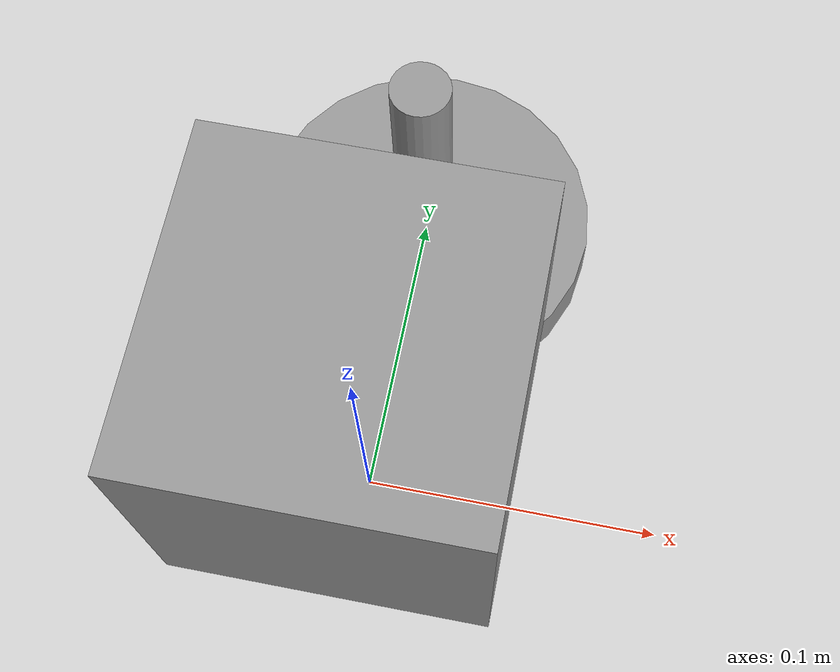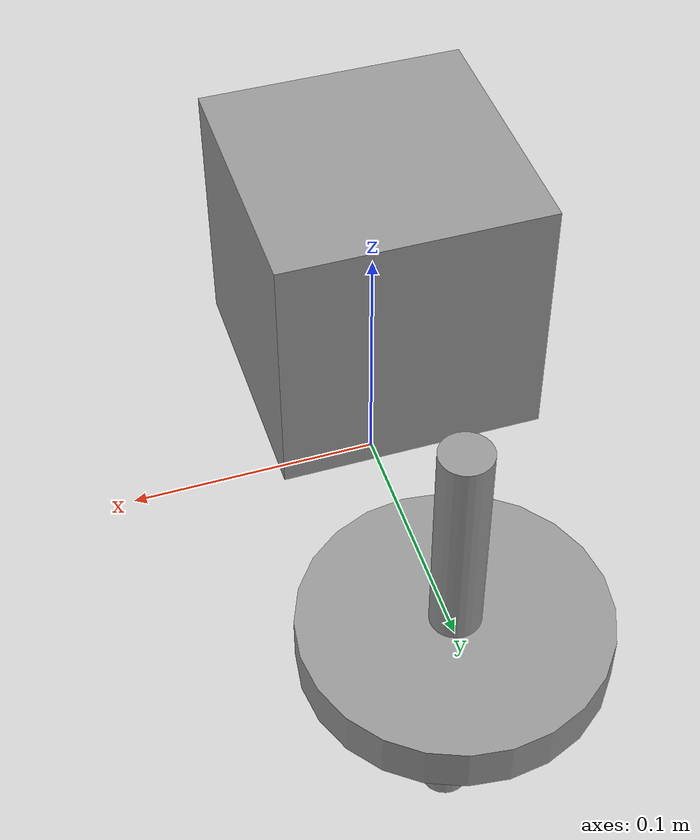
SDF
<?xml version='1.0'?>
<sdf version='1.6'>
  <model name='plunger'>
    <link name='shaft'>
      <inertial>
        <mass>0.00019538</mass>
        <inertia>
          <ixx>8e-07</ixx>
          <ixy>0</ixy>
          <ixz>0</ixz>
          <iyy>8e-07</iyy>
          <iyz>0</iyz>
          <izz>2e-08</izz>
        </inertia>
        <pose frame=''>0 0 0 0 -0 0</pose>
      </inertial>
      <pose frame=''>-0.0 0.10 0.0 0 -0 0</pose>
      <gravity>1</gravity>
      <self_collide>0</self_collide>
      <kinematic>0</kinematic>
      <enable_wind>0</enable_wind>
      <visual name='visual'>
        <pose frame=''>0 0 0 0 -0 0</pose>
        <geometry>
          <cylinder>
            <radius>0.01</radius>
            <length>0.20</length>
          </cylinder>
        </geometry>
        <material>
          <lighting>1</lighting>
          <script>
            <uri>file://media/materials/scripts/gazebo.material</uri>
            <name>Gazebo/Grey</name>
          </script>
          <emissive>0 0 0 1</emissive>
          <shader type='vertex'>
            <normal_map>__default__</normal_map>
          </shader>
        </material>
        <transparency>0</transparency>
        <cast_shadows>1</cast_shadows>
      </visual>
      <collision name='collision'>
        <laser_retro>0</laser_retro>
        <max_contacts>10</max_contacts>
        <pose frame=''>0 0 0 0 -0 0</pose>
        <geometry>
          <cylinder>
            <radius>0.01</radius>
            <length>0.20</length>
          </cylinder>
        </geometry>
        <surface>
          <friction>
            <ode>
              <mu>1</mu>
              <mu2>1</mu2>
              <fdir1>0 0 0</fdir1>
              <slip1>0</slip1>
              <slip2>0</slip2>
            </ode>
            <torsional>
              <coefficient>1</coefficient>
              <patch_radius>0</patch_radius>
              <surface_radius>0</surface_radius>
              <use_patch_radius>1</use_patch_radius>
              <ode>
                <slip>0</slip>
              </ode>
            </torsional>
          </friction>
          <bounce>
            <restitution_coefficient>0</restitution_coefficient>
            <threshold>1e+06</threshold>
          </bounce>
          <contact>
            <collide_without_contact>0</collide_without_contact>
            <collide_without_contact_bitmask>1</collide_without_contact_bitmask>
            <collide_bitmask>1</collide_bitmask>
            <ode>
              <soft_cfm>0</soft_cfm>
              <soft_erp>0.2</soft_erp>
              <kp>1e+13</kp>
              <kd>1</kd>
              <max_vel>0.01</max_vel>
              <min_depth>0</min_depth>
            </ode>
            <bullet>
              <split_impulse>1</split_impulse>
              <split_impulse_penetration_threshold>-0.01</split_impulse_penetration_threshold>
              <soft_cfm>0</soft_cfm>
              <soft_erp>0.2</soft_erp>
              <kp>1e+13</kp>
              <kd>1</kd>
            </bullet>
          </contact>
        </surface>
      </collision>
    </link>
    <link name='top'>
      <inertial>
        <mass>0.000672125</mass>
        <inertia>
          <ixx>7.43739e-07</ixx>
          <ixy>0</ixy>
          <ixz>0</ixz>
          <iyy>7.43739e-07</iyy>
          <iyz>0</iyz>
          <izz>1.2637e-06</izz>
        </inertia>
        <pose frame=''>0 0 0 0 -0 0</pose>
      </inertial>
      <pose frame=''>-0.0 0.10 0.0 0 -0 0</pose>
      <visual name='visual'>
        <pose frame=''>0 0 0 0 -0 0</pose>
        <geometry>
          <cylinder>
            <radius>0.06</radius>
            <length>0.02</length>
          </cylinder>
        </geometry>
        <material>
          <lighting>1</lighting>
          <script>
            <uri>file://media/materials/scripts/gazebo.material</uri>
            <name>Gazebo/Grey</name>
          </script>
          <emissive>0 0 0 1</emissive>
        </material>
        <transparency>0</transparency>
        <cast_shadows>1</cast_shadows>
      </visual>
      <collision name='collision'>
        <laser_retro>0</laser_retro>
        <max_contacts>10</max_contacts>
        <pose frame=''>0 0 0 0 -0 0</pose>
        <geometry>
          <cylinder>
            <radius>0.06</radius>
            <length>0.02</length>
          </cylinder>
        </geometry>
        <surface>
          <friction>
            <ode>
              <mu>1</mu>
              <mu2>1</mu2>
              <fdir1>0 0 0</fdir1>
              <slip1>0</slip1>
              <slip2>0</slip2>
            </ode>
            <torsional>
              <coefficient>1</coefficient>
              <patch_radius>0</patch_radius>
              <surface_radius>0</surface_radius>
              <use_patch_radius>1</use_patch_radius>
              <ode>
                <slip>0</slip>
              </ode>
            </torsional>
          </friction>
          <bounce>
            <restitution_coefficient>0</restitution_coefficient>
            <threshold>1e+06</threshold>
          </bounce>
          <contact>
            <collide_without_contact>0</collide_without_contact>
            <collide_without_contact_bitmask>1</collide_without_contact_bitmask>
            <collide_bitmask>1</collide_bitmask>
            <ode>
              <soft_cfm>0</soft_cfm>
              <soft_erp>0.2</soft_erp>
              <kp>1e+13</kp>
              <kd>1</kd>
              <max_vel>0.01</max_vel>
              <min_depth>0</min_depth>
            </ode>
            <bullet>
              <split_impulse>1</split_impulse>
              <split_impulse_penetration_threshold>-0.01</split_impulse_penetration_threshold>
              <soft_cfm>0</soft_cfm>
              <soft_erp>0.2</soft_erp>
              <kp>1e+13</kp>
              <kd>1</kd>
            </bullet>
          </contact>
        </surface>
      </collision>
    </link>
    <link name='box'>
      <inertial>
        <mass>0.0261898</mass>
        <inertia>
          <ixx>0.000372</ixx>
          <ixy>0</ixy>
          <ixz>0</ixz>
          <iyy>0.00036857</iyy>
          <iyz>0</iyz>
          <izz>0.00042556</izz>
        </inertia>
        <pose frame=''>0 0 0 0 -0 0</pose>
      </inertial>
      <pose frame=''>0 0 0.1 0 -0 0</pose>
      <gravity>1</gravity>
      <self_collide>0</self_collide>
      <kinematic>0</kinematic>
      <enable_wind>0</enable_wind>
      <visual name='visual'>
        <pose frame=''>0 0 0 0 -0 0</pose>
        <geometry>
          <box>
            <size>0.1 0.1 0.1</size>
          </box>
        </geometry>
        <material>
          <lighting>1</lighting>
          <script>
            <uri>file://media/materials/scripts/gazebo.material</uri>
            <name>Gazebo/Grey</name>
          </script>
          <shader type='vertex'>
            <normal_map>__default__</normal_map>
          </shader>
          <ambient>0.3 0.3 0.3 1</ambient>
          <diffuse>0.7 0.7 0.7 1</diffuse>
          <specular>0.01 0.01 0.01 1</specular>
          <emissive>0 0 0 1</emissive>
        </material>
        <transparency>0</transparency>
        <cast_shadows>1</cast_shadows>
      </visual>
      <collision name='collision'>
        <laser_retro>0</laser_retro>
        <max_contacts>10</max_contacts>
        <pose frame=''>0 0 0 0 -0 0</pose>
        <geometry>
          <box>
            <size>0.1 0.1 0.1</size>
          </box>
        </geometry>
        <surface>
          <friction>
            <ode>
              <mu>1</mu>
              <mu2>1</mu2>
              <fdir1>0 0 0</fdir1>
              <slip1>0</slip1>
              <slip2>0</slip2>
            </ode>
            <torsional>
              <coefficient>1</coefficient>
              <patch_radius>0</patch_radius>
              <surface_radius>0</surface_radius>
              <use_patch_radius>1</use_patch_radius>
              <ode>
                <slip>0</slip>
              </ode>
            </torsional>
          </friction>
          <bounce>
            <restitution_coefficient>0</restitution_coefficient>
            <threshold>1e+06</threshold>
          </bounce>
          <contact>
            <collide_without_contact>0</collide_without_contact>
            <collide_without_contact_bitmask>1</collide_without_contact_bitmask>
            <collide_bitmask>1</collide_bitmask>
            <ode>
              <soft_cfm>0</soft_cfm>
              <soft_erp>0.2</soft_erp>
              <kp>1e+13</kp>
              <kd>1</kd>
              <max_vel>0.01</max_vel>
              <min_depth>0</min_depth>
            </ode>
            <bullet>
              <split_impulse>1</split_impulse>
              <split_impulse_penetration_threshold>-0.01</split_impulse_penetration_threshold>
              <soft_cfm>0</soft_cfm>
              <soft_erp>0.2</soft_erp>
              <kp>1e+13</kp>
              <kd>1</kd>
            </bullet>
          </contact>
        </surface>
      </collision>
    </link>
    <joint name='link_0_JOINT_0' type='fixed'>
      <parent>top</parent>
      <child>shaft</child>
      <pose frame=''>0 0 0 0 -0 0</pose>
      <physics>
        <ode>
          <limit>
            <cfm>0</cfm>
            <erp>0.2</erp>
          </limit>
          <suspension>
            <cfm>0</cfm>
            <erp>0.2</erp>
          </suspension>
        </ode>
      </physics>
    </joint>
    <joint name='link_0_JOINT_1' type='revolute'>
      <parent>shaft</parent>
      <child>box</child>
      <pose frame=''>0 0 0 0 -0 0</pose>
      <axis>
        <xyz>1 0 0</xyz>
        <use_parent_model_frame>0</use_parent_model_frame>
        <limit>
          <lower>-1.79769e+308</lower>
          <upper>1.79769e+308</upper>
          <effort>-1</effort>
          <velocity>-1</velocity>
        </limit>
        <dynamics>
          <spring_reference>0</spring_reference>
          <spring_stiffness>0</spring_stiffness>
          <damping>0</damping>
        </dynamics>
      </axis>
      <physics>
        <ode>
          <limit>
            <cfm>0</cfm>
            <erp>0.2</erp>
          </limit>
          <suspension>
            <cfm>0</cfm>
            <erp>0.2</erp>
          </suspension>
        </ode>
      </physics>
    </joint>
    <static>0</static>
    <allow_auto_disable>1</allow_auto_disable>
  </model>
</sdf>
